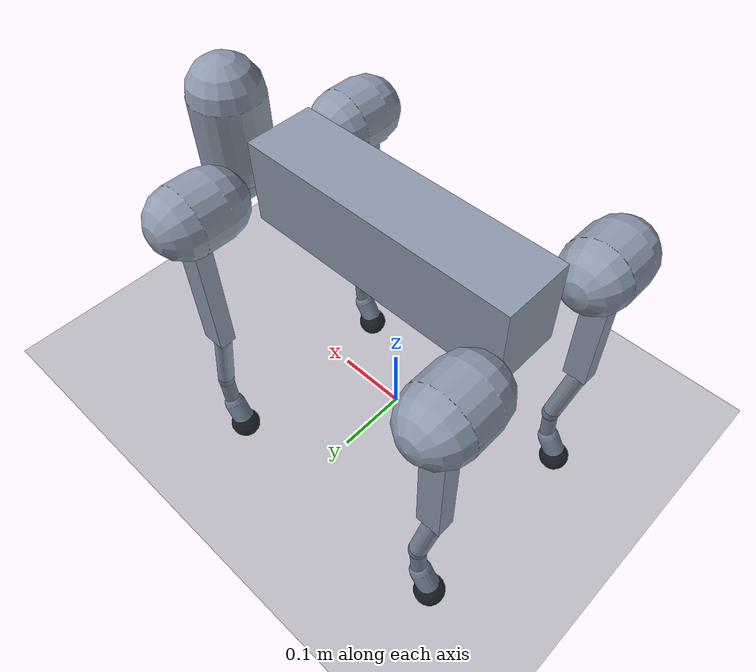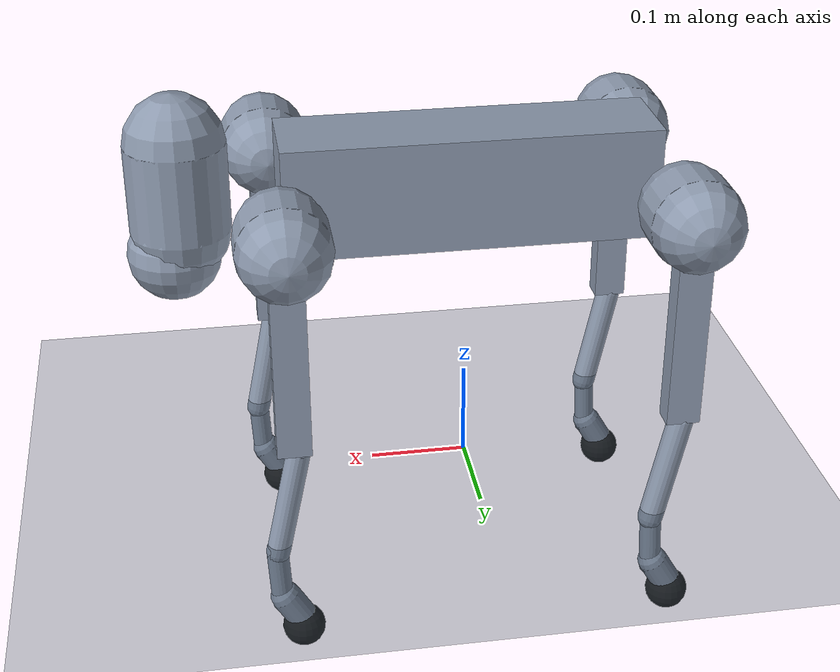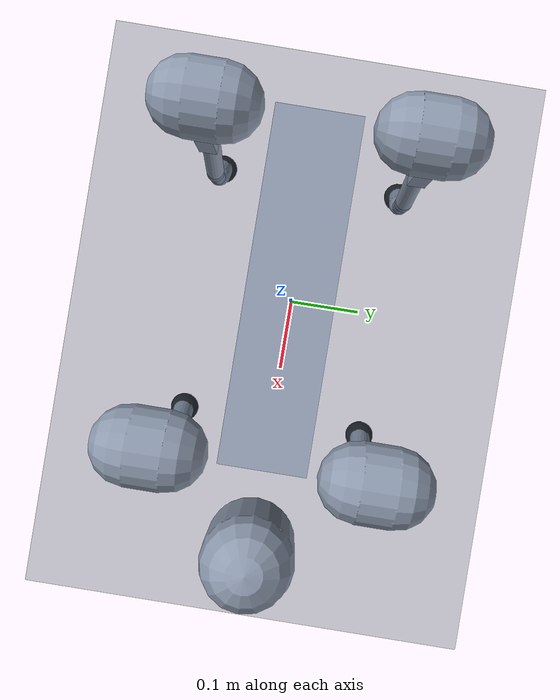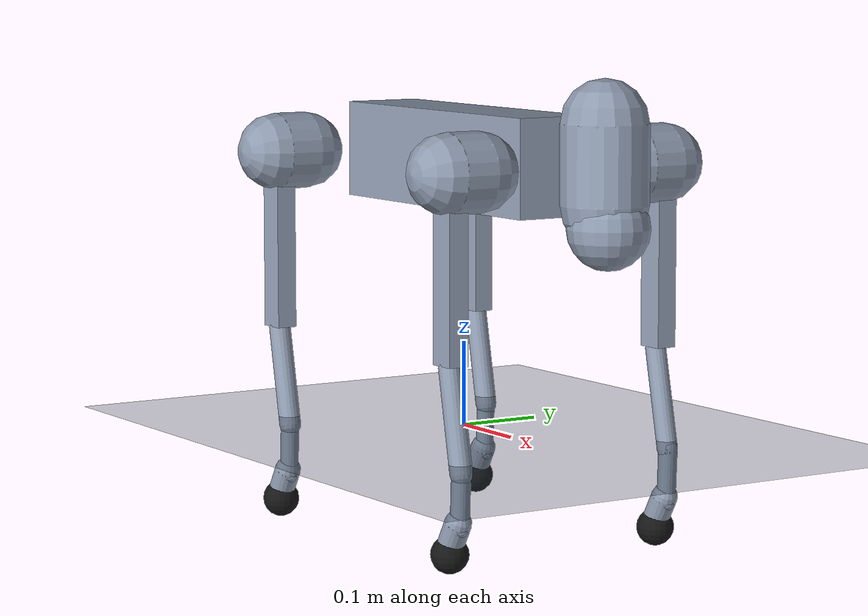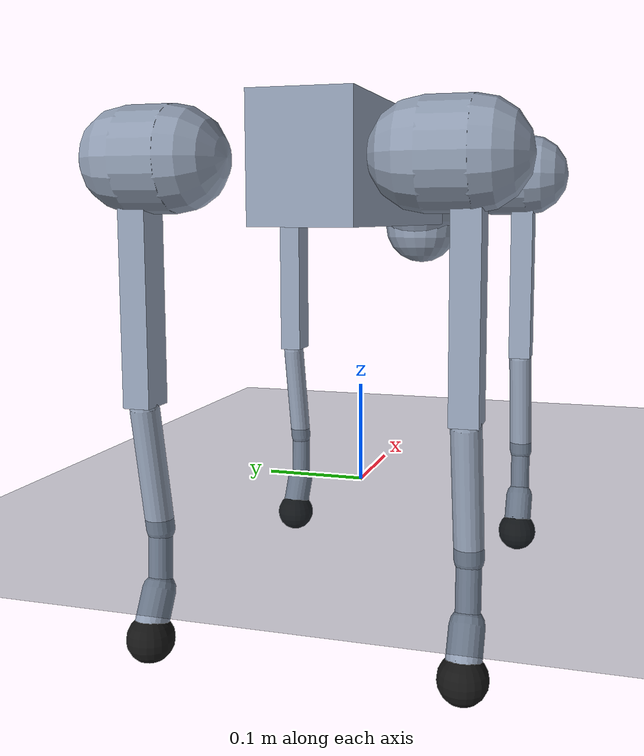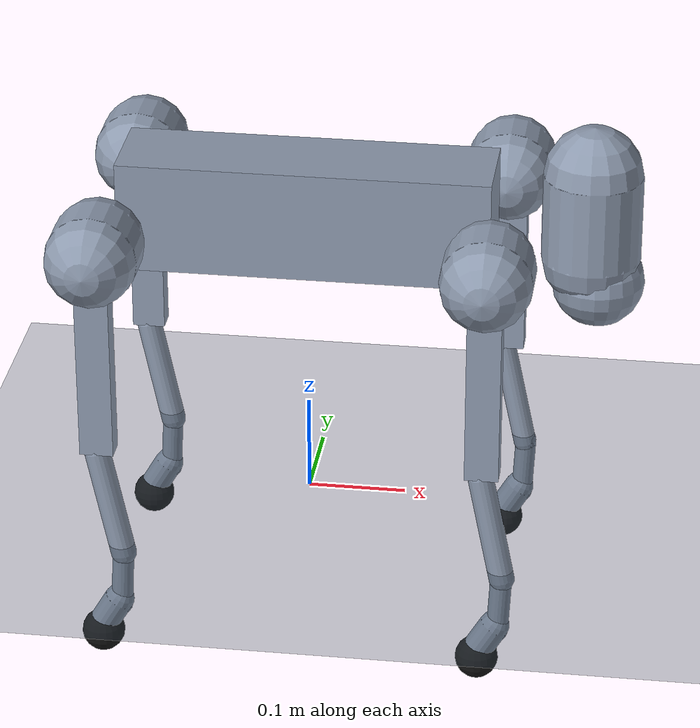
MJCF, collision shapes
<?xml version='1.0' encoding='utf-8'?>
<mujoco model="go2_isaac_urdf">
  <!-- Generated from /home/uwvwko/桌面/uw-backflip/resources/robots/go2/urdf/go2_description.urdf by mujoco/script/urdf_to_mjcf.py -->
  <compiler angle="radian" autolimits="true" fusestatic="false" meshdir="assets" />
  <option timestep="0.005" integrator="Euler" solver="Newton" cone="pyramidal" iterations="100" ls_iterations="50" />
  <visual>
    <headlight diffuse="0.6 0.6 0.6" ambient="0.3 0.3 0.3" specular="0 0 0" />
    <global azimuth="-130" elevation="-20" />
  </visual>
  <asset>
    <material name="metal" rgba=".9 .95 .95 1" />
    <material name="black" rgba="0 0 0 1" />
    <material name="white" rgba="1 1 1 1" />
    <material name="gray" rgba="0.671705 0.692426 0.774270 1" />
    <mesh name="base_0" file="base_0.obj" />
    <mesh name="base_1" file="base_1.obj" />
    <mesh name="base_2" file="base_2.obj" />
    <mesh name="base_3" file="base_3.obj" />
    <mesh name="base_4" file="base_4.obj" />
    <mesh name="hip_0" file="hip_0.obj" />
    <mesh name="hip_1" file="hip_1.obj" />
    <mesh name="thigh_0" file="thigh_0.obj" />
    <mesh name="thigh_1" file="thigh_1.obj" />
    <mesh name="thigh_mirror_0" file="thigh_mirror_0.obj" />
    <mesh name="thigh_mirror_1" file="thigh_mirror_1.obj" />
    <mesh name="calf_0" file="calf_0.obj" />
    <mesh name="calf_1" file="calf_1.obj" />
    <mesh name="calf_mirror_0" file="calf_mirror_0.obj" />
    <mesh name="calf_mirror_1" file="calf_mirror_1.obj" />
    <mesh name="foot" file="foot.obj" />
  </asset>
  <worldbody>
    <geom name="floor" type="plane" size="0 0 0.05" friction="1 0 0" condim="3" priority="0" solref="0.02 1" solimp="0.82 0.95 0.001" rgba="0.18 0.24 0.30 1" />
    <light pos="0 0 1.5" dir="0 0 -1" directional="true" />
    <body name="base" pos="0 0 0.32">
      <inertial pos="0.021112 0 -0.005366" quat="-0.000543471 0.713435 -0.00173769 0.700719" mass="6.921" diaginertia="0.107027 0.0980771 0.0244531" />
      <freejoint name="floating_base" />
      <geom size="0.1881 0.04675 0.057" type="box" rgba="0.55 0.60 0.68 1" contype="1" conaffinity="1" condim="3" group="3" friction="1 0 0" margin="0.001" density="0.001" />
      <geom type="mesh" mesh="base_0" material="black" group="2" contype="0" conaffinity="0" density="0" />
      <geom type="mesh" mesh="base_1" material="black" group="2" contype="0" conaffinity="0" density="0" />
      <geom type="mesh" mesh="base_2" material="black" group="2" contype="0" conaffinity="0" density="0" />
      <geom type="mesh" mesh="base_3" material="white" group="2" contype="0" conaffinity="0" density="0" />
      <geom type="mesh" mesh="base_4" material="gray" group="2" contype="0" conaffinity="0" density="0" />
      <body name="Head_upper" pos="0.285 0 0.01">
        <inertial pos="0 0 0" mass="0.001" diaginertia="9.6e-06 9.6e-06 9.6e-06" />
        <geom size="0.05 0.045" type="capsule" contype="1" conaffinity="1" condim="3" group="3" friction="1 0 0" margin="0.001" density="0.001" rgba="0.55 0.60 0.68 1" />
        <body name="Head_lower" pos="0.008 0 -0.07">
          <inertial pos="0 0 0" mass="0.001" diaginertia="9.6e-06 9.6e-06 9.6e-06" />
          <geom size="0.047" contype="1" conaffinity="1" condim="3" group="3" friction="1 0 0" margin="0.001" density="0.001" rgba="0.55 0.60 0.68 1" />
        </body>
      </body>
      <body name="FL_hip" pos="0.1934 0.0465 0">
        <inertial pos="-0.0054 0.00194 -0.000105" quat="0.497014 0.499245 0.505462 0.498237" mass="0.678" diaginertia="0.00088403 0.000596003 0.000479967" />
        <joint name="FL_hip_joint" pos="0 0 0" axis="1 0 0" range="-1.0472 1.0472" actuatorfrcrange="-23.7 23.7" />
        <geom size="0.046 0.02" pos="0 0.08 0" quat="0.707107 0.707107 0 0" type="capsule" rgba="0.55 0.60 0.68 1" contype="1" conaffinity="1" condim="3" group="3" friction="1 0 0" margin="0.001" density="0.001" />
        <geom type="mesh" mesh="hip_0" material="metal" group="2" contype="0" conaffinity="0" density="0" />
        <geom type="mesh" mesh="hip_1" material="gray" group="2" contype="0" conaffinity="0" density="0" />
        <body name="FL_thigh" pos="0 0.0955 0">
          <inertial pos="-0.00374 -0.0223 -0.0327" quat="0.829533 0.0847635 -0.0200632 0.551623" mass="1.152" diaginertia="0.00594973 0.00584149 0.000878787" />
          <joint name="FL_thigh_joint" pos="0 0 0" axis="0 1 0" range="-1.5708 3.4907" actuatorfrcrange="-23.7 23.7" />
          <geom size="0.1065 0.01225 0.017" pos="0 0 -0.1065" quat="0.707107 0 0.707107 0" type="box" rgba="0.55 0.60 0.68 1" contype="1" conaffinity="1" condim="3" group="3" friction="1 0 0" margin="0.001" density="0.001" />
          <geom type="mesh" mesh="thigh_0" material="metal" group="2" contype="0" conaffinity="0" density="0" />
          <geom type="mesh" mesh="thigh_1" material="gray" group="2" contype="0" conaffinity="0" density="0" />
          <body name="FL_calf" pos="0 0 -0.213">
            <inertial pos="0.00548 -0.000975 -0.115" quat="0.715503 -0.00296111 -0.00858046 0.698551" mass="0.154" diaginertia="0.00110008 0.00108027 3.25534e-05" />
            <joint name="FL_calf_joint" pos="0 0 0" axis="0 1 0" range="-2.7227 -0.83776" actuatorfrcrange="-45.43 45.43" />
            <geom size="0.012 0.06" pos="0.008 0 -0.06" quat="0.994493 0 -0.104807 0" type="capsule" rgba="0.55 0.60 0.68 1" contype="1" conaffinity="1" condim="3" group="3" friction="1 0 0" margin="0.001" density="0.001" />
            <geom size="0.011 0.0325" type="capsule" contype="1" conaffinity="1" condim="3" group="3" friction="1 0 0" margin="0.001" density="0.001" rgba="0.55 0.60 0.68 1" pos="0.02 0 -0.148" quat="0.999688 0 0.0249974 0" />
            <geom size="0.0155 0.015" type="capsule" contype="1" conaffinity="1" condim="3" group="3" friction="1 0 0" margin="0.001" density="0.001" rgba="0.55 0.60 0.68 1" pos="0.008013329335 0 -0.1874502184" quat="0.9650929856 0 0.2619097612 0" />
            <geom type="mesh" mesh="calf_0" material="gray" group="2" contype="0" conaffinity="0" density="0" />
            <geom type="mesh" mesh="calf_1" material="black" group="2" contype="0" conaffinity="0" density="0" />
            <body name="FL_foot" pos="0 0 -0.213">
              <inertial pos="0 0 0" mass="0.04" diaginertia="9.6e-06 9.6e-06 9.6e-06" />
              <geom size="0.022" pos="-0.002 0 0" rgba="0.08 0.08 0.08 1" contype="1" conaffinity="1" condim="3" group="3" friction="1 0 0" margin="0.001" density="0.001" />
              <geom type="mesh" mesh="foot" material="black" group="2" contype="0" conaffinity="0" density="0" />
            </body>
          </body>
        </body>
      </body>
      <body name="FR_hip" pos="0.1934 -0.0465 0">
        <inertial pos="-0.0054 -0.00194 -0.000105" quat="0.498237 0.505462 0.499245 0.497014" mass="0.678" diaginertia="0.00088403 0.000596003 0.000479967" />
        <joint name="FR_hip_joint" pos="0 0 0" axis="1 0 0" range="-1.0472 1.0472" actuatorfrcrange="-23.7 23.7" />
        <geom size="0.046 0.02" pos="0 -0.08 0" quat="0.707107 0.707107 0 0" type="capsule" rgba="0.55 0.60 0.68 1" contype="1" conaffinity="1" condim="3" group="3" friction="1 0 0" margin="0.001" density="0.001" />
        <geom type="mesh" mesh="hip_0" material="metal" group="2" contype="0" conaffinity="0" density="0" quat="4.63268e-05 1 0 0" />
        <geom type="mesh" mesh="hip_1" material="gray" group="2" contype="0" conaffinity="0" density="0" quat="4.63268e-05 1 0 0" />
        <body name="FR_thigh" pos="0 -0.0955 0">
          <inertial pos="-0.00374 0.0223 -0.0327" quat="0.551623 -0.0200632 0.0847635 0.829533" mass="1.152" diaginertia="0.00594973 0.00584149 0.000878787" />
          <joint name="FR_thigh_joint" pos="0 0 0" axis="0 1 0" range="-1.5708 3.4907" actuatorfrcrange="-23.7 23.7" />
          <geom size="0.1065 0.01225 0.017" pos="0 0 -0.1065" quat="0.707107 0 0.707107 0" type="box" rgba="0.55 0.60 0.68 1" contype="1" conaffinity="1" condim="3" group="3" friction="1 0 0" margin="0.001" density="0.001" />
          <geom type="mesh" mesh="thigh_mirror_0" material="metal" group="2" contype="0" conaffinity="0" density="0" />
          <geom type="mesh" mesh="thigh_mirror_1" material="gray" group="2" contype="0" conaffinity="0" density="0" />
          <body name="FR_calf" pos="0 0 -0.213">
            <inertial pos="0.00548 0.000975 -0.115" quat="0.698551 -0.00858046 -0.00296111 0.715503" mass="0.154" diaginertia="0.00110008 0.00108027 3.25534e-05" />
            <joint name="FR_calf_joint" pos="0 0 0" axis="0 1 0" range="-2.7227 -0.83776" actuatorfrcrange="-45.43 45.43" />
            <geom size="0.013 0.06" pos="0.01 0 -0.06" quat="0.995004 0 -0.0998334 0" type="capsule" rgba="0.55 0.60 0.68 1" contype="1" conaffinity="1" condim="3" group="3" friction="1 0 0" margin="0.001" density="0.001" />
            <geom size="0.011 0.0325" type="capsule" contype="1" conaffinity="1" condim="3" group="3" friction="1 0 0" margin="0.001" density="0.001" rgba="0.55 0.60 0.68 1" pos="0.02 0 -0.148" quat="0.999688 0 0.0249974 0" />
            <geom size="0.0155 0.015" type="capsule" contype="1" conaffinity="1" condim="3" group="3" friction="1 0 0" margin="0.001" density="0.001" rgba="0.55 0.60 0.68 1" pos="0.008013329335 0 -0.1874502184" quat="0.9650929856 0 0.2619097612 0" />
            <geom type="mesh" mesh="calf_mirror_0" material="gray" group="2" contype="0" conaffinity="0" density="0" />
            <geom type="mesh" mesh="calf_mirror_1" material="black" group="2" contype="0" conaffinity="0" density="0" />
            <body name="FR_foot" pos="0 0 -0.213">
              <inertial pos="0 0 0" mass="0.04" diaginertia="9.6e-06 9.6e-06 9.6e-06" />
              <geom size="0.022" pos="-0.002 0 0" rgba="0.08 0.08 0.08 1" contype="1" conaffinity="1" condim="3" group="3" friction="1 0 0" margin="0.001" density="0.001" />
              <geom type="mesh" mesh="foot" material="black" group="2" contype="0" conaffinity="0" density="0" />
            </body>
          </body>
        </body>
      </body>
      <body name="RL_hip" pos="-0.1934 0.0465 0">
        <inertial pos="0.0054 0.00194 -0.000105" quat="0.505462 0.498237 0.497014 0.499245" mass="0.678" diaginertia="0.00088403 0.000596003 0.000479967" />
        <joint name="RL_hip_joint" pos="0 0 0" axis="1 0 0" range="-1.0472 1.0472" actuatorfrcrange="-23.7 23.7" />
        <geom size="0.046 0.02" pos="0 0.08 0" quat="0.707107 0.707107 0 0" type="capsule" rgba="0.55 0.60 0.68 1" contype="1" conaffinity="1" condim="3" group="3" friction="1 0 0" margin="0.001" density="0.001" />
        <geom type="mesh" mesh="hip_0" material="metal" group="2" contype="0" conaffinity="0" density="0" quat="4.63268e-05 0 1 0" />
        <geom type="mesh" mesh="hip_1" material="gray" group="2" contype="0" conaffinity="0" density="0" quat="4.63268e-05 0 1 0" />
        <body name="RL_thigh" pos="0 0.0955 0">
          <inertial pos="-0.00374 -0.0223 -0.0327" quat="0.829533 0.0847635 -0.0200632 0.551623" mass="1.152" diaginertia="0.00594973 0.00584149 0.000878787" />
          <joint name="RL_thigh_joint" pos="0 0 0" axis="0 1 0" range="-0.5236 4.5379" actuatorfrcrange="-23.7 23.7" />
          <geom size="0.1065 0.01225 0.017" pos="0 0 -0.1065" quat="0.707107 0 0.707107 0" type="box" rgba="0.55 0.60 0.68 1" contype="1" conaffinity="1" condim="3" group="3" friction="1 0 0" margin="0.001" density="0.001" />
          <geom type="mesh" mesh="thigh_0" material="metal" group="2" contype="0" conaffinity="0" density="0" />
          <geom type="mesh" mesh="thigh_1" material="gray" group="2" contype="0" conaffinity="0" density="0" />
          <body name="RL_calf" pos="0 0 -0.213">
            <inertial pos="0.00548 -0.000975 -0.115" quat="0.715503 -0.00296111 -0.00858046 0.698551" mass="0.154" diaginertia="0.00110008 0.00108027 3.25534e-05" />
            <joint name="RL_calf_joint" pos="0 0 0" axis="0 1 0" range="-2.7227 -0.83776" actuatorfrcrange="-45.43 45.43" />
            <geom size="0.013 0.06" pos="0.01 0 -0.06" quat="0.995004 0 -0.0998334 0" type="capsule" rgba="0.55 0.60 0.68 1" contype="1" conaffinity="1" condim="3" group="3" friction="1 0 0" margin="0.001" density="0.001" />
            <geom size="0.011 0.0325" type="capsule" contype="1" conaffinity="1" condim="3" group="3" friction="1 0 0" margin="0.001" density="0.001" rgba="0.55 0.60 0.68 1" pos="0.02 0 -0.148" quat="0.999688 0 0.0249974 0" />
            <geom size="0.0155 0.015" type="capsule" contype="1" conaffinity="1" condim="3" group="3" friction="1 0 0" margin="0.001" density="0.001" rgba="0.55 0.60 0.68 1" pos="0.008013329335 0 -0.1874502184" quat="0.9650929856 0 0.2619097612 0" />
            <geom type="mesh" mesh="calf_0" material="gray" group="2" contype="0" conaffinity="0" density="0" />
            <geom type="mesh" mesh="calf_1" material="black" group="2" contype="0" conaffinity="0" density="0" />
            <body name="RL_foot" pos="0 0 -0.213">
              <inertial pos="0 0 0" mass="0.04" diaginertia="9.6e-06 9.6e-06 9.6e-06" />
              <geom size="0.022" pos="-0.002 0 0" rgba="0.08 0.08 0.08 1" contype="1" conaffinity="1" condim="3" group="3" friction="1 0 0" margin="0.001" density="0.001" />
              <geom type="mesh" mesh="foot" material="black" group="2" contype="0" conaffinity="0" density="0" />
            </body>
          </body>
        </body>
      </body>
      <body name="RR_hip" pos="-0.1934 -0.0465 0">
        <inertial pos="0.0054 -0.00194 -0.000105" quat="0.499245 0.497014 0.498237 0.505462" mass="0.678" diaginertia="0.00088403 0.000596003 0.000479967" />
        <joint name="RR_hip_joint" pos="0 0 0" axis="1 0 0" range="-1.0472 1.0472" actuatorfrcrange="-23.7 23.7" />
        <geom size="0.046 0.02" pos="0 -0.08 0" quat="0.707107 0.707107 0 0" type="capsule" rgba="0.55 0.60 0.68 1" contype="1" conaffinity="1" condim="3" group="3" friction="1 0 0" margin="0.001" density="0.001" />
        <geom type="mesh" mesh="hip_0" material="metal" group="2" contype="0" conaffinity="0" density="0" quat="2.14617e-09 4.63268e-05 4.63268e-05 -1" />
        <geom type="mesh" mesh="hip_1" material="gray" group="2" contype="0" conaffinity="0" density="0" quat="2.14617e-09 4.63268e-05 4.63268e-05 -1" />
        <body name="RR_thigh" pos="0 -0.0955 0">
          <inertial pos="-0.00374 0.0223 -0.0327" quat="0.551623 -0.0200632 0.0847635 0.829533" mass="1.152" diaginertia="0.00594973 0.00584149 0.000878787" />
          <joint name="RR_thigh_joint" pos="0 0 0" axis="0 1 0" range="-0.5236 4.5379" actuatorfrcrange="-23.7 23.7" />
          <geom size="0.1065 0.01225 0.017" pos="0 0 -0.1065" quat="0.707107 0 0.707107 0" type="box" rgba="0.55 0.60 0.68 1" contype="1" conaffinity="1" condim="3" group="3" friction="1 0 0" margin="0.001" density="0.001" />
          <geom type="mesh" mesh="thigh_mirror_0" material="metal" group="2" contype="0" conaffinity="0" density="0" />
          <geom type="mesh" mesh="thigh_mirror_1" material="gray" group="2" contype="0" conaffinity="0" density="0" />
          <body name="RR_calf" pos="0 0 -0.213">
            <inertial pos="0.00548 0.000975 -0.115" quat="0.698551 -0.00858046 -0.00296111 0.715503" mass="0.154" diaginertia="0.00110008 0.00108027 3.25534e-05" />
            <joint name="RR_calf_joint" pos="0 0 0" axis="0 1 0" range="-2.7227 -0.83776" actuatorfrcrange="-45.43 45.43" />
            <geom size="0.013 0.06" pos="0.01 0 -0.06" quat="0.995004 0 -0.0998334 0" type="capsule" rgba="0.55 0.60 0.68 1" contype="1" conaffinity="1" condim="3" group="3" friction="1 0 0" margin="0.001" density="0.001" />
            <geom size="0.011 0.0325" type="capsule" contype="1" conaffinity="1" condim="3" group="3" friction="1 0 0" margin="0.001" density="0.001" rgba="0.55 0.60 0.68 1" pos="0.02 0 -0.148" quat="0.999688 0 0.0249974 0" />
            <geom size="0.0155 0.015" type="capsule" contype="1" conaffinity="1" condim="3" group="3" friction="1 0 0" margin="0.001" density="0.001" rgba="0.55 0.60 0.68 1" pos="0.008013329335 0 -0.1874502184" quat="0.9650929856 0 0.2619097612 0" />
            <geom type="mesh" mesh="calf_mirror_0" material="gray" group="2" contype="0" conaffinity="0" density="0" />
            <geom type="mesh" mesh="calf_mirror_1" material="black" group="2" contype="0" conaffinity="0" density="0" />
            <body name="RR_foot" pos="0 0 -0.213">
              <inertial pos="0 0 0" mass="0.04" diaginertia="9.6e-06 9.6e-06 9.6e-06" />
              <geom size="0.022" pos="-0.002 0 0" rgba="0.08 0.08 0.08 1" contype="1" conaffinity="1" condim="3" group="3" friction="1 0 0" margin="0.001" density="0.001" />
              <geom type="mesh" mesh="foot" material="black" group="2" contype="0" conaffinity="0" density="0" />
            </body>
          </body>
        </body>
      </body>
    </body>
  </worldbody>
  <actuator>
    <motor name="FL_hip" joint="FL_hip_joint" gear="1" ctrllimited="true" ctrlrange="-23.7 23.7" />
    <motor name="FL_thigh" joint="FL_thigh_joint" gear="1" ctrllimited="true" ctrlrange="-23.7 23.7" />
    <motor name="FL_calf" joint="FL_calf_joint" gear="1" ctrllimited="true" ctrlrange="-45.43 45.43" />
    <motor name="FR_hip" joint="FR_hip_joint" gear="1" ctrllimited="true" ctrlrange="-23.7 23.7" />
    <motor name="FR_thigh" joint="FR_thigh_joint" gear="1" ctrllimited="true" ctrlrange="-23.7 23.7" />
    <motor name="FR_calf" joint="FR_calf_joint" gear="1" ctrllimited="true" ctrlrange="-45.43 45.43" />
    <motor name="RL_hip" joint="RL_hip_joint" gear="1" ctrllimited="true" ctrlrange="-23.7 23.7" />
    <motor name="RL_thigh" joint="RL_thigh_joint" gear="1" ctrllimited="true" ctrlrange="-23.7 23.7" />
    <motor name="RL_calf" joint="RL_calf_joint" gear="1" ctrllimited="true" ctrlrange="-45.43 45.43" />
    <motor name="RR_hip" joint="RR_hip_joint" gear="1" ctrllimited="true" ctrlrange="-23.7 23.7" />
    <motor name="RR_thigh" joint="RR_thigh_joint" gear="1" ctrllimited="true" ctrlrange="-23.7 23.7" />
    <motor name="RR_calf" joint="RR_calf_joint" gear="1" ctrllimited="true" ctrlrange="-45.43 45.43" />
  </actuator>
</mujoco>
